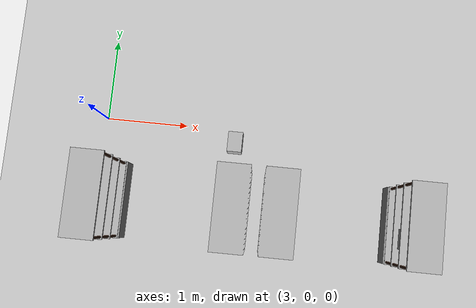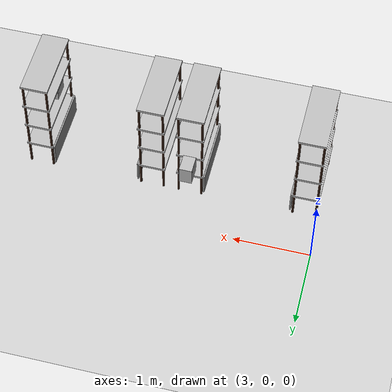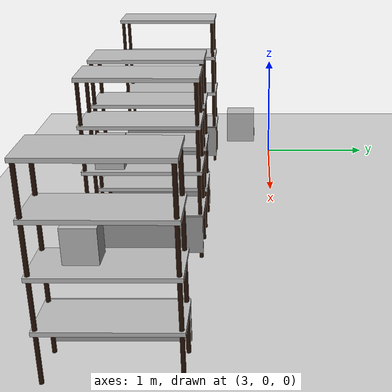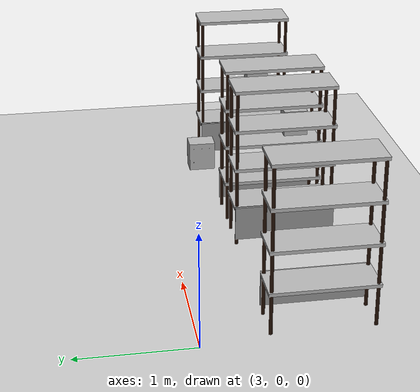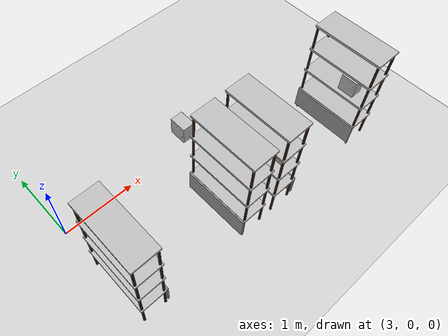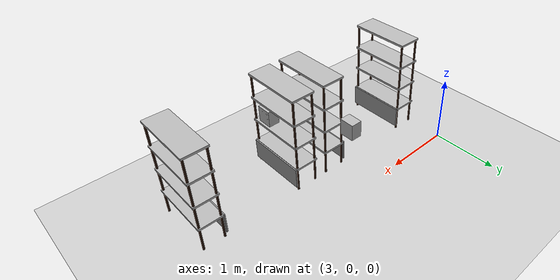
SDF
<sdf version="1.7">
 <world name="default">
  <model name="ground_plane">
   <static>1</static>
   <link name="link">
    <collision name="collision">
     <geometry><plane><normal>0 0 1</normal><size>100 100</size></plane></geometry>
     <surface><friction><ode><mu>100</mu><mu2>50</mu2></ode></friction></surface>
    </collision>
    <visual name="visual">
     <cast_shadows>0</cast_shadows>
     <geometry><plane><normal>0 0 1</normal><size>100 100</size></plane></geometry>
     <material>
      <script><uri>file://media/materials/scripts/gazebo.material</uri><name>Gazebo/Grey</name></script>
     </material>
    </visual>
   </link>
  </model>
  <model name="rack_0">
   <link name="link">
    <inertial>
     <mass>0.1</mass>
     <inertia><ixx>0.01857</ixx><ixy>0</ixy><ixz>0</ixz><iyy>0.015598</iyy><iyz>0</iyz><izz>0.00305</izz></inertia>
    </inertial>
    <visual name="visual1">
     <cast_shadows>0</cast_shadows>
     <geometry><mesh><uri>model://rack/meshes/rack.dae</uri></mesh></geometry>
     <material>
      <shader type="pixel"><normal_map>__default__</normal_map></shader>
      <emissive>0 0 0 1</emissive>
     </material>
    </visual>
    <visual name="visual_2">
     <cast_shadows>0</cast_shadows>
     <geometry><box><size>0.02 0.9 0.31</size></box></geometry>
     <material>
      <lighting>1</lighting>
      <script><uri>file://media/materials/scripts/gazebo.material</uri><name>Gazebo/Grey</name></script>
      <shader type="pixel"><normal_map>__default__</normal_map></shader>
      <ambient>0.3 0.3 0.3 1</ambient>
      <diffuse>0.7 0.7 0.7 1</diffuse>
      <specular>0.01 0.01 0.01 1</specular>
      <emissive>0 0 0 1</emissive>
     </material>
     <pose>-0.185 0 0.22 0 -0 0</pose>
    </visual>
    <collision name="collision_7">
     <pose>0 0 0.36 0 1.57 1.57</pose>
     <geometry><box><size>0.05 0.35 0.91</size></box></geometry>
     <surface>
      <friction>
       <ode><mu>1</mu><mu2>1</mu2><fdir1>0 0 0</fdir1><slip1>0</slip1><slip2>0</slip2></ode>
       <torsional>
        <coefficient>1</coefficient>
        <patch_radius>0</patch_radius>
        <surface_radius>0</surface_radius>
        <use_patch_radius>1</use_patch_radius>
        <ode><slip>0</slip></ode>
       </torsional>
      </friction>
      <bounce><restitution_coefficient>0</restitution_coefficient><threshold>1e+06</threshold></bounce>
      <contact>
       <collide_without_contact>0</collide_without_contact>
       <collide_without_contact_bitmask>1</collide_without_contact_bitmask>
       <collide_bitmask>1</collide_bitmask>
       <ode>
        <soft_cfm>0</soft_cfm>
        <soft_erp>0.2</soft_erp>
        <kp>1e+15</kp>
        <kd>1e+13</kd>
        <max_vel>0.01</max_vel>
        <min_depth>0</min_depth>
       </ode>
       <bullet>
        <split_impulse>1</split_impulse>
        <split_impulse_penetration_threshold>-0.01</split_impulse_penetration_threshold>
        <soft_cfm>0</soft_cfm>
        <soft_erp>0.2</soft_erp>
        <kp>1e+13</kp>
        <kd>1</kd>
       </bullet>
      </contact>
     </surface>
    </collision>
    <collision name="collision_6">
     <pose>0 0 0.725 0 1.57 1.57</pose>
     <geometry><box><size>0.05 0.35 0.91</size></box></geometry>
     <surface>
      <friction>
       <ode><mu>1</mu><mu2>1</mu2><fdir1>0 0 0</fdir1><slip1>0</slip1><slip2>0</slip2></ode>
       <torsional>
        <coefficient>1</coefficient>
        <patch_radius>0</patch_radius>
        <surface_radius>0</surface_radius>
        <use_patch_radius>1</use_patch_radius>
        <ode><slip>0</slip></ode>
       </torsional>
      </friction>
      <bounce><restitution_coefficient>0</restitution_coefficient><threshold>1e+06</threshold></bounce>
      <contact>
       <collide_without_contact>0</collide_without_contact>
       <collide_without_contact_bitmask>1</collide_without_contact_bitmask>
       <collide_bitmask>1</collide_bitmask>
       <ode>
        <soft_cfm>0</soft_cfm>
        <soft_erp>0.2</soft_erp>
        <kp>1e+15</kp>
        <kd>1e+13</kd>
        <max_vel>0.01</max_vel>
        <min_depth>0</min_depth>
       </ode>
       <bullet>
        <split_impulse>1</split_impulse>
        <split_impulse_penetration_threshold>-0.01</split_impulse_penetration_threshold>
        <soft_cfm>0</soft_cfm>
        <soft_erp>0.2</soft_erp>
        <kp>1e+13</kp>
        <kd>1</kd>
       </bullet>
      </contact>
     </surface>
    </collision>
    <collision name="collision_5">
     <pose>0 0 1.09 0 1.57 1.57</pose>
     <geometry><box><size>0.05 0.35 0.91</size></box></geometry>
     <surface>
      <friction>
       <ode><mu>1</mu><mu2>1</mu2><fdir1>0 0 0</fdir1><slip1>0</slip1><slip2>0</slip2></ode>
       <torsional>
        <coefficient>1</coefficient>
        <patch_radius>0</patch_radius>
        <surface_radius>0</surface_radius>
        <use_patch_radius>1</use_patch_radius>
        <ode><slip>0</slip></ode>
       </torsional>
      </friction>
      <bounce><restitution_coefficient>0</restitution_coefficient><threshold>1e+06</threshold></bounce>
      <contact>
       <collide_without_contact>0</collide_without_contact>
       <collide_without_contact_bitmask>1</collide_without_contact_bitmask>
       <collide_bitmask>1</collide_bitmask>
       <ode>
        <soft_cfm>0</soft_cfm>
        <soft_erp>0.2</soft_erp>
        <kp>1e+15</kp>
        <kd>1e+13</kd>
        <max_vel>0.01</max_vel>
        <min_depth>0</min_depth>
       </ode>
       <bullet>
        <split_impulse>1</split_impulse>
        <split_impulse_penetration_threshold>-0.01</split_impulse_penetration_threshold>
        <soft_cfm>0</soft_cfm>
        <soft_erp>0.2</soft_erp>
        <kp>1e+13</kp>
        <kd>1</kd>
       </bullet>
      </contact>
     </surface>
    </collision>
    <collision name="collision_3">
     <pose>0 0 1.455 0 1.57 1.57</pose>
     <geometry><box><size>0.05 0.35 0.91</size></box></geometry>
     <surface>
      <friction>
       <ode><mu>1</mu><mu2>1</mu2><fdir1>0 0 0</fdir1><slip1>0</slip1><slip2>0</slip2></ode>
       <torsional>
        <coefficient>1</coefficient>
        <patch_radius>0</patch_radius>
        <surface_radius>0</surface_radius>
        <use_patch_radius>1</use_patch_radius>
        <ode><slip>0</slip></ode>
       </torsional>
      </friction>
      <bounce><restitution_coefficient>0</restitution_coefficient><threshold>1e+06</threshold></bounce>
      <contact>
       <collide_without_contact>0</collide_without_contact>
       <collide_without_contact_bitmask>1</collide_without_contact_bitmask>
       <collide_bitmask>1</collide_bitmask>
       <ode>
        <soft_cfm>0</soft_cfm>
        <soft_erp>0.2</soft_erp>
        <kp>1e+15</kp>
        <kd>1e+13</kd>
        <max_vel>0.01</max_vel>
        <min_depth>0</min_depth>
       </ode>
       <bullet>
        <split_impulse>1</split_impulse>
        <split_impulse_penetration_threshold>-0.01</split_impulse_penetration_threshold>
        <soft_cfm>0</soft_cfm>
        <soft_erp>0.2</soft_erp>
        <kp>1e+13</kp>
        <kd>1</kd>
       </bullet>
      </contact>
     </surface>
    </collision>
    <collision name="collision_1">
     <pose>0 0.43 0.73 0 -0 1.57</pose>
     <geometry><box><size>0.05 0.36 1.46</size></box></geometry>
     <surface>
      <friction>
       <ode><mu>1</mu><mu2>1</mu2><fdir1>0 0 0</fdir1><slip1>0</slip1><slip2>0</slip2></ode>
       <torsional>
        <coefficient>1</coefficient>
        <patch_radius>0</patch_radius>
        <surface_radius>0</surface_radius>
        <use_patch_radius>1</use_patch_radius>
        <ode><slip>0</slip></ode>
       </torsional>
      </friction>
      <bounce><restitution_coefficient>0</restitution_coefficient><threshold>1e+06</threshold></bounce>
      <contact>
       <collide_without_contact>0</collide_without_contact>
       <collide_without_contact_bitmask>1</collide_without_contact_bitmask>
       <collide_bitmask>1</collide_bitmask>
       <ode>
        <soft_cfm>0</soft_cfm>
        <soft_erp>0.2</soft_erp>
        <kp>1e+15</kp>
        <kd>1e+13</kd>
        <max_vel>0.01</max_vel>
        <min_depth>0</min_depth>
       </ode>
       <bullet>
        <split_impulse>1</split_impulse>
        <split_impulse_penetration_threshold>-0.01</split_impulse_penetration_threshold>
        <soft_cfm>0</soft_cfm>
        <soft_erp>0.2</soft_erp>
        <kp>1e+13</kp>
        <kd>1</kd>
       </bullet>
      </contact>
     </surface>
    </collision>
    <collision name="collision_2">
     <pose>0 -0.43 0.73 0 -0 1.57</pose>
     <geometry><box><size>0.05 0.36 1.46</size></box></geometry>
     <surface>
      <friction>
       <ode><mu>1</mu><mu2>1</mu2><fdir1>0 0 0</fdir1><slip1>0</slip1><slip2>0</slip2></ode>
       <torsional>
        <coefficient>1</coefficient>
        <patch_radius>0</patch_radius>
        <surface_radius>0</surface_radius>
        <use_patch_radius>1</use_patch_radius>
        <ode><slip>0</slip></ode>
       </torsional>
      </friction>
      <bounce><restitution_coefficient>0</restitution_coefficient><threshold>1e+06</threshold></bounce>
      <contact>
       <collide_without_contact>0</collide_without_contact>
       <collide_without_contact_bitmask>1</collide_without_contact_bitmask>
       <collide_bitmask>1</collide_bitmask>
       <ode>
        <soft_cfm>0</soft_cfm>
        <soft_erp>0.2</soft_erp>
        <kp>1e+15</kp>
        <kd>1e+13</kd>
        <max_vel>0.01</max_vel>
        <min_depth>0</min_depth>
       </ode>
       <bullet>
        <split_impulse>1</split_impulse>
        <split_impulse_penetration_threshold>-0.01</split_impulse_penetration_threshold>
        <soft_cfm>0</soft_cfm>
        <soft_erp>0.2</soft_erp>
        <kp>1e+13</kp>
        <kd>1</kd>
       </bullet>
      </contact>
     </surface>
    </collision>
    <collision name="collision">
     <pose>-0.185 0 0.22 0 -0 0</pose>
     <geometry><box><size>0.02 0.9 0.31</size></box></geometry>
     <surface>
      <friction>
       <ode><mu>1</mu><mu2>1</mu2><fdir1>0 0 0</fdir1><slip1>0</slip1><slip2>0</slip2></ode>
       <torsional>
        <coefficient>1</coefficient>
        <patch_radius>0</patch_radius>
        <surface_radius>0</surface_radius>
        <use_patch_radius>1</use_patch_radius>
        <ode><slip>0</slip></ode>
       </torsional>
      </friction>
      <bounce><restitution_coefficient>0</restitution_coefficient><threshold>1e+06</threshold></bounce>
      <contact>
       <collide_without_contact>0</collide_without_contact>
       <collide_without_contact_bitmask>1</collide_without_contact_bitmask>
       <collide_bitmask>1</collide_bitmask>
       <ode>
        <soft_cfm>0</soft_cfm>
        <soft_erp>0.2</soft_erp>
        <kp>1e+15</kp>
        <kd>1e+13</kd>
        <max_vel>0.01</max_vel>
        <min_depth>0</min_depth>
       </ode>
       <bullet>
        <split_impulse>1</split_impulse>
        <split_impulse_penetration_threshold>-0.01</split_impulse_penetration_threshold>
        <soft_cfm>0</soft_cfm>
        <soft_erp>0.2</soft_erp>
        <kp>1e+13</kp>
        <kd>1</kd>
       </bullet>
      </contact>
     </surface>
    </collision>
   </link>
   <static>0</static>
   <pose>6.68734 -0.999831 0.030505 0.000236 -0.004828 -0.004037</pose>
  </model>
  <model name="rack_5">
   <link name="link">
    <inertial>
     <mass>0.1</mass>
     <inertia><ixx>0.01857</ixx><ixy>0</ixy><ixz>0</ixz><iyy>0.015598</iyy><iyz>0</iyz><izz>0.00305</izz></inertia>
    </inertial>
    <visual name="visual1">
     <cast_shadows>0</cast_shadows>
     <geometry><mesh><uri>model://rack/meshes/rack.dae</uri></mesh></geometry>
     <material>
      <shader type="pixel"><normal_map>__default__</normal_map></shader>
      <emissive>0 0 0 1</emissive>
     </material>
    </visual>
    <visual name="visual_2">
     <cast_shadows>0</cast_shadows>
     <geometry><box><size>0.02 0.9 0.31</size></box></geometry>
     <material>
      <lighting>1</lighting>
      <script><uri>file://media/materials/scripts/gazebo.material</uri><name>Gazebo/Grey</name></script>
      <shader type="pixel"><normal_map>__default__</normal_map></shader>
      <ambient>0.3 0.3 0.3 1</ambient>
      <diffuse>0.7 0.7 0.7 1</diffuse>
      <specular>0.01 0.01 0.01 1</specular>
      <emissive>0 0 0 1</emissive>
     </material>
     <pose>-0.185 0 0.22 0 -0 0</pose>
    </visual>
    <collision name="collision_7">
     <pose>0 0 0.36 0 1.57 1.57</pose>
     <geometry><box><size>0.05 0.35 0.91</size></box></geometry>
     <surface>
      <friction>
       <ode><mu>1</mu><mu2>1</mu2><fdir1>0 0 0</fdir1><slip1>0</slip1><slip2>0</slip2></ode>
       <torsional>
        <coefficient>1</coefficient>
        <patch_radius>0</patch_radius>
        <surface_radius>0</surface_radius>
        <use_patch_radius>1</use_patch_radius>
        <ode><slip>0</slip></ode>
       </torsional>
      </friction>
      <bounce><restitution_coefficient>0</restitution_coefficient><threshold>1e+06</threshold></bounce>
      <contact>
       <collide_without_contact>0</collide_without_contact>
       <collide_without_contact_bitmask>1</collide_without_contact_bitmask>
       <collide_bitmask>1</collide_bitmask>
       <ode>
        <soft_cfm>0</soft_cfm>
        <soft_erp>0.2</soft_erp>
        <kp>1e+15</kp>
        <kd>1e+13</kd>
        <max_vel>0.01</max_vel>
        <min_depth>0</min_depth>
       </ode>
       <bullet>
        <split_impulse>1</split_impulse>
        <split_impulse_penetration_threshold>-0.01</split_impulse_penetration_threshold>
        <soft_cfm>0</soft_cfm>
        <soft_erp>0.2</soft_erp>
        <kp>1e+13</kp>
        <kd>1</kd>
       </bullet>
      </contact>
     </surface>
    </collision>
    <collision name="collision_6">
     <pose>0 0 0.725 0 1.57 1.57</pose>
     <geometry><box><size>0.05 0.35 0.91</size></box></geometry>
     <surface>
      <friction>
       <ode><mu>1</mu><mu2>1</mu2><fdir1>0 0 0</fdir1><slip1>0</slip1><slip2>0</slip2></ode>
       <torsional>
        <coefficient>1</coefficient>
        <patch_radius>0</patch_radius>
        <surface_radius>0</surface_radius>
        <use_patch_radius>1</use_patch_radius>
        <ode><slip>0</slip></ode>
       </torsional>
      </friction>
      <bounce><restitution_coefficient>0</restitution_coefficient><threshold>1e+06</threshold></bounce>
      <contact>
       <collide_without_contact>0</collide_without_contact>
       <collide_without_contact_bitmask>1</collide_without_contact_bitmask>
       <collide_bitmask>1</collide_bitmask>
       <ode>
        <soft_cfm>0</soft_cfm>
        <soft_erp>0.2</soft_erp>
        <kp>1e+15</kp>
        <kd>1e+13</kd>
        <max_vel>0.01</max_vel>
        <min_depth>0</min_depth>
       </ode>
       <bullet>
        <split_impulse>1</split_impulse>
        <split_impulse_penetration_threshold>-0.01</split_impulse_penetration_threshold>
        <soft_cfm>0</soft_cfm>
        <soft_erp>0.2</soft_erp>
        <kp>1e+13</kp>
        <kd>1</kd>
       </bullet>
      </contact>
     </surface>
    </collision>
    <collision name="collision_5">
     <pose>0 0 1.09 0 1.57 1.57</pose>
     <geometry><box><size>0.05 0.35 0.91</size></box></geometry>
     <surface>
      <friction>
       <ode><mu>1</mu><mu2>1</mu2><fdir1>0 0 0</fdir1><slip1>0</slip1><slip2>0</slip2></ode>
       <torsional>
        <coefficient>1</coefficient>
        <patch_radius>0</patch_radius>
        <surface_radius>0</surface_radius>
        <use_patch_radius>1</use_patch_radius>
        <ode><slip>0</slip></ode>
       </torsional>
      </friction>
      <bounce><restitution_coefficient>0</restitution_coefficient><threshold>1e+06</threshold></bounce>
      <contact>
       <collide_without_contact>0</collide_without_contact>
       <collide_without_contact_bitmask>1</collide_without_contact_bitmask>
       <collide_bitmask>1</collide_bitmask>
       <ode>
        <soft_cfm>0</soft_cfm>
        <soft_erp>0.2</soft_erp>
        <kp>1e+15</kp>
        <kd>1e+13</kd>
        <max_vel>0.01</max_vel>
        <min_depth>0</min_depth>
       </ode>
       <bullet>
        <split_impulse>1</split_impulse>
        <split_impulse_penetration_threshold>-0.01</split_impulse_penetration_threshold>
        <soft_cfm>0</soft_cfm>
        <soft_erp>0.2</soft_erp>
        <kp>1e+13</kp>
        <kd>1</kd>
       </bullet>
      </contact>
     </surface>
    </collision>
    <collision name="collision_3">
     <pose>0 0 1.455 0 1.57 1.57</pose>
     <geometry><box><size>0.05 0.35 0.91</size></box></geometry>
     <surface>
      <friction>
       <ode><mu>1</mu><mu2>1</mu2><fdir1>0 0 0</fdir1><slip1>0</slip1><slip2>0</slip2></ode>
       <torsional>
        <coefficient>1</coefficient>
        <patch_radius>0</patch_radius>
        <surface_radius>0</surface_radius>
        <use_patch_radius>1</use_patch_radius>
        <ode><slip>0</slip></ode>
       </torsional>
      </friction>
      <bounce><restitution_coefficient>0</restitution_coefficient><threshold>1e+06</threshold></bounce>
      <contact>
       <collide_without_contact>0</collide_without_contact>
       <collide_without_contact_bitmask>1</collide_without_contact_bitmask>
       <collide_bitmask>1</collide_bitmask>
       <ode>
        <soft_cfm>0</soft_cfm>
        <soft_erp>0.2</soft_erp>
        <kp>1e+15</kp>
        <kd>1e+13</kd>
        <max_vel>0.01</max_vel>
        <min_depth>0</min_depth>
       </ode>
       <bullet>
        <split_impulse>1</split_impulse>
        <split_impulse_penetration_threshold>-0.01</split_impulse_penetration_threshold>
        <soft_cfm>0</soft_cfm>
        <soft_erp>0.2</soft_erp>
        <kp>1e+13</kp>
        <kd>1</kd>
       </bullet>
      </contact>
     </surface>
    </collision>
    <collision name="collision_1">
     <pose>0 0.43 0.73 0 -0 1.57</pose>
     <geometry><box><size>0.05 0.36 1.46</size></box></geometry>
     <surface>
      <friction>
       <ode><mu>1</mu><mu2>1</mu2><fdir1>0 0 0</fdir1><slip1>0</slip1><slip2>0</slip2></ode>
       <torsional>
        <coefficient>1</coefficient>
        <patch_radius>0</patch_radius>
        <surface_radius>0</surface_radius>
        <use_patch_radius>1</use_patch_radius>
        <ode><slip>0</slip></ode>
       </torsional>
      </friction>
      <bounce><restitution_coefficient>0</restitution_coefficient><threshold>1e+06</threshold></bounce>
      <contact>
       <collide_without_contact>0</collide_without_contact>
       <collide_without_contact_bitmask>1</collide_without_contact_bitmask>
       <collide_bitmask>1</collide_bitmask>
       <ode>
        <soft_cfm>0</soft_cfm>
        <soft_erp>0.2</soft_erp>
        <kp>1e+15</kp>
        <kd>1e+13</kd>
        <max_vel>0.01</max_vel>
        <min_depth>0</min_depth>
       </ode>
       <bullet>
        <split_impulse>1</split_impulse>
        <split_impulse_penetration_threshold>-0.01</split_impulse_penetration_threshold>
        <soft_cfm>0</soft_cfm>
        <soft_erp>0.2</soft_erp>
        <kp>1e+13</kp>
        <kd>1</kd>
       </bullet>
      </contact>
     </surface>
    </collision>
    <collision name="collision_2">
     <pose>0 -0.43 0.73 0 -0 1.57</pose>
     <geometry><box><size>0.05 0.36 1.46</size></box></geometry>
     <surface>
      <friction>
       <ode><mu>1</mu><mu2>1</mu2><fdir1>0 0 0</fdir1><slip1>0</slip1><slip2>0</slip2></ode>
       <torsional>
        <coefficient>1</coefficient>
        <patch_radius>0</patch_radius>
        <surface_radius>0</surface_radius>
        <use_patch_radius>1</use_patch_radius>
        <ode><slip>0</slip></ode>
       </torsional>
      </friction>
      <bounce><restitution_coefficient>0</restitution_coefficient><threshold>1e+06</threshold></bounce>
      <contact>
       <collide_without_contact>0</collide_without_contact>
       <collide_without_contact_bitmask>1</collide_without_contact_bitmask>
       <collide_bitmask>1</collide_bitmask>
       <ode>
        <soft_cfm>0</soft_cfm>
        <soft_erp>0.2</soft_erp>
        <kp>1e+15</kp>
        <kd>1e+13</kd>
        <max_vel>0.01</max_vel>
        <min_depth>0</min_depth>
       </ode>
       <bullet>
        <split_impulse>1</split_impulse>
        <split_impulse_penetration_threshold>-0.01</split_impulse_penetration_threshold>
        <soft_cfm>0</soft_cfm>
        <soft_erp>0.2</soft_erp>
        <kp>1e+13</kp>
        <kd>1</kd>
       </bullet>
      </contact>
     </surface>
    </collision>
    <collision name="collision">
     <pose>-0.185 0 0.22 0 -0 0</pose>
     <geometry><box><size>0.02 0.9 0.31</size></box></geometry>
     <surface>
      <friction>
       <ode><mu>1</mu><mu2>1</mu2><fdir1>0 0 0</fdir1><slip1>0</slip1><slip2>0</slip2></ode>
       <torsional>
        <coefficient>1</coefficient>
        <patch_radius>0</patch_radius>
        <surface_radius>0</surface_radius>
        <use_patch_radius>1</use_patch_radius>
        <ode><slip>0</slip></ode>
       </torsional>
      </friction>
      <bounce><restitution_coefficient>0</restitution_coefficient><threshold>1e+06</threshold></bounce>
      <contact>
       <collide_without_contact>0</collide_without_contact>
       <collide_without_contact_bitmask>1</collide_without_contact_bitmask>
       <collide_bitmask>1</collide_bitmask>
       <ode>
        <soft_cfm>0</soft_cfm>
        <soft_erp>0.2</soft_erp>
        <kp>1e+15</kp>
        <kd>1e+13</kd>
        <max_vel>0.01</max_vel>
        <min_depth>0</min_depth>
       </ode>
       <bullet>
        <split_impulse>1</split_impulse>
        <split_impulse_penetration_threshold>-0.01</split_impulse_penetration_threshold>
        <soft_cfm>0</soft_cfm>
        <soft_erp>0.2</soft_erp>
        <kp>1e+13</kp>
        <kd>1</kd>
       </bullet>
      </contact>
     </surface>
    </collision>
   </link>
   <static>0</static>
   <pose>5.2 -1 0.034223 1e-06 1e-06 3.14</pose>
  </model>
  <model name="rack_9">
   <link name="link">
    <inertial>
     <mass>0.1</mass>
     <inertia><ixx>0.01857</ixx><ixy>0</ixy><ixz>0</ixz><iyy>0.015598</iyy><iyz>0</iyz><izz>0.00305</izz></inertia>
    </inertial>
    <visual name="visual1">
     <cast_shadows>0</cast_shadows>
     <geometry><mesh><uri>model://rack/meshes/rack.dae</uri></mesh></geometry>
     <material>
      <shader type="pixel"><normal_map>__default__</normal_map></shader>
      <emissive>0 0 0 1</emissive>
     </material>
    </visual>
    <visual name="visual_2">
     <cast_shadows>0</cast_shadows>
     <geometry><box><size>0.02 0.9 0.31</size></box></geometry>
     <material>
      <lighting>1</lighting>
      <script><uri>file://media/materials/scripts/gazebo.material</uri><name>Gazebo/Grey</name></script>
      <shader type="pixel"><normal_map>__default__</normal_map></shader>
      <ambient>0.3 0.3 0.3 1</ambient>
      <diffuse>0.7 0.7 0.7 1</diffuse>
      <specular>0.01 0.01 0.01 1</specular>
      <emissive>0 0 0 1</emissive>
     </material>
     <pose>-0.185 0 0.22 0 -0 0</pose>
    </visual>
    <collision name="collision_7">
     <pose>0 0 0.36 0 1.57 1.57</pose>
     <geometry><box><size>0.05 0.35 0.91</size></box></geometry>
     <surface>
      <friction>
       <ode><mu>1</mu><mu2>1</mu2><fdir1>0 0 0</fdir1><slip1>0</slip1><slip2>0</slip2></ode>
       <torsional>
        <coefficient>1</coefficient>
        <patch_radius>0</patch_radius>
        <surface_radius>0</surface_radius>
        <use_patch_radius>1</use_patch_radius>
        <ode><slip>0</slip></ode>
       </torsional>
      </friction>
      <bounce><restitution_coefficient>0</restitution_coefficient><threshold>1e+06</threshold></bounce>
      <contact>
       <collide_without_contact>0</collide_without_contact>
       <collide_without_contact_bitmask>1</collide_without_contact_bitmask>
       <collide_bitmask>1</collide_bitmask>
       <ode>
        <soft_cfm>0</soft_cfm>
        <soft_erp>0.2</soft_erp>
        <kp>1e+15</kp>
        <kd>1e+13</kd>
        <max_vel>0.01</max_vel>
        <min_depth>0</min_depth>
       </ode>
       <bullet>
        <split_impulse>1</split_impulse>
        <split_impulse_penetration_threshold>-0.01</split_impulse_penetration_threshold>
        <soft_cfm>0</soft_cfm>
        <soft_erp>0.2</soft_erp>
        <kp>1e+13</kp>
        <kd>1</kd>
       </bullet>
      </contact>
     </surface>
    </collision>
    <collision name="collision_6">
     <pose>0 0 0.725 0 1.57 1.57</pose>
     <geometry><box><size>0.05 0.35 0.91</size></box></geometry>
     <surface>
      <friction>
       <ode><mu>1</mu><mu2>1</mu2><fdir1>0 0 0</fdir1><slip1>0</slip1><slip2>0</slip2></ode>
       <torsional>
        <coefficient>1</coefficient>
        <patch_radius>0</patch_radius>
        <surface_radius>0</surface_radius>
        <use_patch_radius>1</use_patch_radius>
        <ode><slip>0</slip></ode>
       </torsional>
      </friction>
      <bounce><restitution_coefficient>0</restitution_coefficient><threshold>1e+06</threshold></bounce>
      <contact>
       <collide_without_contact>0</collide_without_contact>
       <collide_without_contact_bitmask>1</collide_without_contact_bitmask>
       <collide_bitmask>1</collide_bitmask>
       <ode>
        <soft_cfm>0</soft_cfm>
        <soft_erp>0.2</soft_erp>
        <kp>1e+15</kp>
        <kd>1e+13</kd>
        <max_vel>0.01</max_vel>
        <min_depth>0</min_depth>
       </ode>
       <bullet>
        <split_impulse>1</split_impulse>
        <split_impulse_penetration_threshold>-0.01</split_impulse_penetration_threshold>
        <soft_cfm>0</soft_cfm>
        <soft_erp>0.2</soft_erp>
        <kp>1e+13</kp>
        <kd>1</kd>
       </bullet>
      </contact>
     </surface>
    </collision>
    <collision name="collision_5">
     <pose>0 0 1.09 0 1.57 1.57</pose>
     <geometry><box><size>0.05 0.35 0.91</size></box></geometry>
     <surface>
      <friction>
       <ode><mu>1</mu><mu2>1</mu2><fdir1>0 0 0</fdir1><slip1>0</slip1><slip2>0</slip2></ode>
       <torsional>
        <coefficient>1</coefficient>
        <patch_radius>0</patch_radius>
        <surface_radius>0</surface_radius>
        <use_patch_radius>1</use_patch_radius>
        <ode><slip>0</slip></ode>
       </torsional>
      </friction>
      <bounce><restitution_coefficient>0</restitution_coefficient><threshold>1e+06</threshold></bounce>
      <contact>
       <collide_without_contact>0</collide_without_contact>
       <collide_without_contact_bitmask>1</collide_without_contact_bitmask>
       <collide_bitmask>1</collide_bitmask>
       <ode>
        <soft_cfm>0</soft_cfm>
        <soft_erp>0.2</soft_erp>
        <kp>1e+15</kp>
        <kd>1e+13</kd>
        <max_vel>0.01</max_vel>
        <min_depth>0</min_depth>
       </ode>
       <bullet>
        <split_impulse>1</split_impulse>
        <split_impulse_penetration_threshold>-0.01</split_impulse_penetration_threshold>
        <soft_cfm>0</soft_cfm>
        <soft_erp>0.2</soft_erp>
        <kp>1e+13</kp>
        <kd>1</kd>
       </bullet>
      </contact>
     </surface>
    </collision>
    <collision name="collision_3">
     <pose>0 0 1.455 0 1.57 1.57</pose>
     <geometry><box><size>0.05 0.35 0.91</size></box></geometry>
     <surface>
      <friction>
       <ode><mu>1</mu><mu2>1</mu2><fdir1>0 0 0</fdir1><slip1>0</slip1><slip2>0</slip2></ode>
       <torsional>
        <coefficient>1</coefficient>
        <patch_radius>0</patch_radius>
        <surface_radius>0</surface_radius>
        <use_patch_radius>1</use_patch_radius>
        <ode><slip>0</slip></ode>
       </torsional>
      </friction>
      <bounce><restitution_coefficient>0</restitution_coefficient><threshold>1e+06</threshold></bounce>
      <contact>
       <collide_without_contact>0</collide_without_contact>
       <collide_without_contact_bitmask>1</collide_without_contact_bitmask>
       <collide_bitmask>1</collide_bitmask>
       <ode>
        <soft_cfm>0</soft_cfm>
        <soft_erp>0.2</soft_erp>
        <kp>1e+15</kp>
        <kd>1e+13</kd>
        <max_vel>0.01</max_vel>
        <min_depth>0</min_depth>
       </ode>
       <bullet>
        <split_impulse>1</split_impulse>
        <split_impulse_penetration_threshold>-0.01</split_impulse_penetration_threshold>
        <soft_cfm>0</soft_cfm>
        <soft_erp>0.2</soft_erp>
        <kp>1e+13</kp>
        <kd>1</kd>
       </bullet>
      </contact>
     </surface>
    </collision>
    <collision name="collision_1">
     <pose>0 0.43 0.73 0 -0 1.57</pose>
     <geometry><box><size>0.05 0.36 1.46</size></box></geometry>
     <surface>
      <friction>
       <ode><mu>1</mu><mu2>1</mu2><fdir1>0 0 0</fdir1><slip1>0</slip1><slip2>0</slip2></ode>
       <torsional>
        <coefficient>1</coefficient>
        <patch_radius>0</patch_radius>
        <surface_radius>0</surface_radius>
        <use_patch_radius>1</use_patch_radius>
        <ode><slip>0</slip></ode>
       </torsional>
      </friction>
      <bounce><restitution_coefficient>0</restitution_coefficient><threshold>1e+06</threshold></bounce>
      <contact>
       <collide_without_contact>0</collide_without_contact>
       <collide_without_contact_bitmask>1</collide_without_contact_bitmask>
       <collide_bitmask>1</collide_bitmask>
       <ode>
        <soft_cfm>0</soft_cfm>
        <soft_erp>0.2</soft_erp>
        <kp>1e+15</kp>
        <kd>1e+13</kd>
        <max_vel>0.01</max_vel>
        <min_depth>0</min_depth>
       </ode>
       <bullet>
        <split_impulse>1</split_impulse>
        <split_impulse_penetration_threshold>-0.01</split_impulse_penetration_threshold>
        <soft_cfm>0</soft_cfm>
        <soft_erp>0.2</soft_erp>
        <kp>1e+13</kp>
        <kd>1</kd>
       </bullet>
      </contact>
     </surface>
    </collision>
    <collision name="collision_2">
     <pose>0 -0.43 0.73 0 -0 1.57</pose>
     <geometry><box><size>0.05 0.36 1.46</size></box></geometry>
     <surface>
      <friction>
       <ode><mu>1</mu><mu2>1</mu2><fdir1>0 0 0</fdir1><slip1>0</slip1><slip2>0</slip2></ode>
       <torsional>
        <coefficient>1</coefficient>
        <patch_radius>0</patch_radius>
        <surface_radius>0</surface_radius>
        <use_patch_radius>1</use_patch_radius>
        <ode><slip>0</slip></ode>
       </torsional>
      </friction>
      <bounce><restitution_coefficient>0</restitution_coefficient><threshold>1e+06</threshold></bounce>
      <contact>
       <collide_without_contact>0</collide_without_contact>
       <collide_without_contact_bitmask>1</collide_without_contact_bitmask>
       <collide_bitmask>1</collide_bitmask>
       <ode>
        <soft_cfm>0</soft_cfm>
        <soft_erp>0.2</soft_erp>
        <kp>1e+15</kp>
        <kd>1e+13</kd>
        <max_vel>0.01</max_vel>
        <min_depth>0</min_depth>
       </ode>
       <bullet>
        <split_impulse>1</split_impulse>
        <split_impulse_penetration_threshold>-0.01</split_impulse_penetration_threshold>
        <soft_cfm>0</soft_cfm>
        <soft_erp>0.2</soft_erp>
        <kp>1e+13</kp>
        <kd>1</kd>
       </bullet>
      </contact>
     </surface>
    </collision>
    <collision name="collision">
     <pose>-0.185 0 0.22 0 -0 0</pose>
     <geometry><box><size>0.02 0.9 0.31</size></box></geometry>
     <surface>
      <friction>
       <ode><mu>1</mu><mu2>1</mu2><fdir1>0 0 0</fdir1><slip1>0</slip1><slip2>0</slip2></ode>
       <torsional>
        <coefficient>1</coefficient>
        <patch_radius>0</patch_radius>
        <surface_radius>0</surface_radius>
        <use_patch_radius>1</use_patch_radius>
        <ode><slip>0</slip></ode>
       </torsional>
      </friction>
      <bounce><restitution_coefficient>0</restitution_coefficient><threshold>1e+06</threshold></bounce>
      <contact>
       <collide_without_contact>0</collide_without_contact>
       <collide_without_contact_bitmask>1</collide_without_contact_bitmask>
       <collide_bitmask>1</collide_bitmask>
       <ode>
        <soft_cfm>0</soft_cfm>
        <soft_erp>0.2</soft_erp>
        <kp>1e+15</kp>
        <kd>1e+13</kd>
        <max_vel>0.01</max_vel>
        <min_depth>0</min_depth>
       </ode>
       <bullet>
        <split_impulse>1</split_impulse>
        <split_impulse_penetration_threshold>-0.01</split_impulse_penetration_threshold>
        <soft_cfm>0</soft_cfm>
        <soft_erp>0.2</soft_erp>
        <kp>1e+13</kp>
        <kd>1</kd>
       </bullet>
      </contact>
     </surface>
    </collision>
   </link>
   <static>0</static>
   <pose>4.7 -1 0.034216 0 -0 0</pose>
  </model>
  <model name="rack_13">
   <link name="link">
    <inertial>
     <mass>0.1</mass>
     <inertia><ixx>0.01857</ixx><ixy>0</ixy><ixz>0</ixz><iyy>0.015598</iyy><iyz>0</iyz><izz>0.00305</izz></inertia>
    </inertial>
    <visual name="visual1">
     <cast_shadows>0</cast_shadows>
     <geometry><mesh><uri>model://rack/meshes/rack.dae</uri></mesh></geometry>
     <material>
      <shader type="pixel"><normal_map>__default__</normal_map></shader>
      <emissive>0 0 0 1</emissive>
     </material>
    </visual>
    <visual name="visual_2">
     <cast_shadows>0</cast_shadows>
     <geometry><box><size>0.02 0.9 0.31</size></box></geometry>
     <material>
      <lighting>1</lighting>
      <script><uri>file://media/materials/scripts/gazebo.material</uri><name>Gazebo/Grey</name></script>
      <shader type="pixel"><normal_map>__default__</normal_map></shader>
      <ambient>0.3 0.3 0.3 1</ambient>
      <diffuse>0.7 0.7 0.7 1</diffuse>
      <specular>0.01 0.01 0.01 1</specular>
      <emissive>0 0 0 1</emissive>
     </material>
     <pose>-0.185 0 0.22 0 -0 0</pose>
    </visual>
    <collision name="collision_7">
     <pose>0 0 0.36 0 1.57 1.57</pose>
     <geometry><box><size>0.05 0.35 0.91</size></box></geometry>
     <surface>
      <friction>
       <ode><mu>1</mu><mu2>1</mu2><fdir1>0 0 0</fdir1><slip1>0</slip1><slip2>0</slip2></ode>
       <torsional>
        <coefficient>1</coefficient>
        <patch_radius>0</patch_radius>
        <surface_radius>0</surface_radius>
        <use_patch_radius>1</use_patch_radius>
        <ode><slip>0</slip></ode>
       </torsional>
      </friction>
      <bounce><restitution_coefficient>0</restitution_coefficient><threshold>1e+06</threshold></bounce>
      <contact>
       <collide_without_contact>0</collide_without_contact>
       <collide_without_contact_bitmask>1</collide_without_contact_bitmask>
       <collide_bitmask>1</collide_bitmask>
       <ode>
        <soft_cfm>0</soft_cfm>
        <soft_erp>0.2</soft_erp>
        <kp>1e+15</kp>
        <kd>1e+13</kd>
        <max_vel>0.01</max_vel>
        <min_depth>0</min_depth>
       </ode>
       <bullet>
        <split_impulse>1</split_impulse>
        <split_impulse_penetration_threshold>-0.01</split_impulse_penetration_threshold>
        <soft_cfm>0</soft_cfm>
        <soft_erp>0.2</soft_erp>
        <kp>1e+13</kp>
        <kd>1</kd>
       </bullet>
      </contact>
     </surface>
    </collision>
    <collision name="collision_6">
     <pose>0 0 0.725 0 1.57 1.57</pose>
     <geometry><box><size>0.05 0.35 0.91</size></box></geometry>
     <surface>
      <friction>
       <ode><mu>1</mu><mu2>1</mu2><fdir1>0 0 0</fdir1><slip1>0</slip1><slip2>0</slip2></ode>
       <torsional>
        <coefficient>1</coefficient>
        <patch_radius>0</patch_radius>
        <surface_radius>0</surface_radius>
        <use_patch_radius>1</use_patch_radius>
        <ode><slip>0</slip></ode>
       </torsional>
      </friction>
      <bounce><restitution_coefficient>0</restitution_coefficient><threshold>1e+06</threshold></bounce>
      <contact>
       <collide_without_contact>0</collide_without_contact>
       <collide_without_contact_bitmask>1</collide_without_contact_bitmask>
       <collide_bitmask>1</collide_bitmask>
       <ode>
        <soft_cfm>0</soft_cfm>
        <soft_erp>0.2</soft_erp>
        <kp>1e+15</kp>
        <kd>1e+13</kd>
        <max_vel>0.01</max_vel>
        <min_depth>0</min_depth>
       </ode>
       <bullet>
        <split_impulse>1</split_impulse>
        <split_impulse_penetration_threshold>-0.01</split_impulse_penetration_threshold>
        <soft_cfm>0</soft_cfm>
        <soft_erp>0.2</soft_erp>
        <kp>1e+13</kp>
        <kd>1</kd>
       </bullet>
      </contact>
     </surface>
    </collision>
    <collision name="collision_5">
     <pose>0 0 1.09 0 1.57 1.57</pose>
     <geometry><box><size>0.05 0.35 0.91</size></box></geometry>
     <surface>
      <friction>
       <ode><mu>1</mu><mu2>1</mu2><fdir1>0 0 0</fdir1><slip1>0</slip1><slip2>0</slip2></ode>
       <torsional>
        <coefficient>1</coefficient>
        <patch_radius>0</patch_radius>
        <surface_radius>0</surface_radius>
        <use_patch_radius>1</use_patch_radius>
        <ode><slip>0</slip></ode>
       </torsional>
      </friction>
      <bounce><restitution_coefficient>0</restitution_coefficient><threshold>1e+06</threshold></bounce>
      <contact>
       <collide_without_contact>0</collide_without_contact>
       <collide_without_contact_bitmask>1</collide_without_contact_bitmask>
       <collide_bitmask>1</collide_bitmask>
       <ode>
        <soft_cfm>0</soft_cfm>
        <soft_erp>0.2</soft_erp>
        <kp>1e+15</kp>
        <kd>1e+13</kd>
        <max_vel>0.01</max_vel>
        <min_depth>0</min_depth>
       </ode>
       <bullet>
        <split_impulse>1</split_impulse>
        <split_impulse_penetration_threshold>-0.01</split_impulse_penetration_threshold>
        <soft_cfm>0</soft_cfm>
        <soft_erp>0.2</soft_erp>
        <kp>1e+13</kp>
        <kd>1</kd>
       </bullet>
      </contact>
     </surface>
    </collision>
    <collision name="collision_3">
     <pose>0 0 1.455 0 1.57 1.57</pose>
     <geometry><box><size>0.05 0.35 0.91</size></box></geometry>
     <surface>
      <friction>
       <ode><mu>1</mu><mu2>1</mu2><fdir1>0 0 0</fdir1><slip1>0</slip1><slip2>0</slip2></ode>
       <torsional>
        <coefficient>1</coefficient>
        <patch_radius>0</patch_radius>
        <surface_radius>0</surface_radius>
        <use_patch_radius>1</use_patch_radius>
        <ode><slip>0</slip></ode>
       </torsional>
      </friction>
      <bounce><restitution_coefficient>0</restitution_coefficient><threshold>1e+06</threshold></bounce>
      <contact>
       <collide_without_contact>0</collide_without_contact>
       <collide_without_contact_bitmask>1</collide_without_contact_bitmask>
       <collide_bitmask>1</collide_bitmask>
       <ode>
        <soft_cfm>0</soft_cfm>
        <soft_erp>0.2</soft_erp>
        <kp>1e+15</kp>
        <kd>1e+13</kd>
        <max_vel>0.01</max_vel>
        <min_depth>0</min_depth>
       </ode>
       <bullet>
        <split_impulse>1</split_impulse>
        <split_impulse_penetration_threshold>-0.01</split_impulse_penetration_threshold>
        <soft_cfm>0</soft_cfm>
        <soft_erp>0.2</soft_erp>
        <kp>1e+13</kp>
        <kd>1</kd>
       </bullet>
      </contact>
     </surface>
    </collision>
    <collision name="collision_1">
     <pose>0 0.43 0.73 0 -0 1.57</pose>
     <geometry><box><size>0.05 0.36 1.46</size></box></geometry>
     <surface>
      <friction>
       <ode><mu>1</mu><mu2>1</mu2><fdir1>0 0 0</fdir1><slip1>0</slip1><slip2>0</slip2></ode>
       <torsional>
        <coefficient>1</coefficient>
        <patch_radius>0</patch_radius>
        <surface_radius>0</surface_radius>
        <use_patch_radius>1</use_patch_radius>
        <ode><slip>0</slip></ode>
       </torsional>
      </friction>
      <bounce><restitution_coefficient>0</restitution_coefficient><threshold>1e+06</threshold></bounce>
      <contact>
       <collide_without_contact>0</collide_without_contact>
       <collide_without_contact_bitmask>1</collide_without_contact_bitmask>
       <collide_bitmask>1</collide_bitmask>
       <ode>
        <soft_cfm>0</soft_cfm>
        <soft_erp>0.2</soft_erp>
        <kp>1e+15</kp>
        <kd>1e+13</kd>
        <max_vel>0.01</max_vel>
        <min_depth>0</min_depth>
       </ode>
       <bullet>
        <split_impulse>1</split_impulse>
        <split_impulse_penetration_threshold>-0.01</split_impulse_penetration_threshold>
        <soft_cfm>0</soft_cfm>
        <soft_erp>0.2</soft_erp>
        <kp>1e+13</kp>
        <kd>1</kd>
       </bullet>
      </contact>
     </surface>
    </collision>
    <collision name="collision_2">
     <pose>0 -0.43 0.73 0 -0 1.57</pose>
     <geometry><box><size>0.05 0.36 1.46</size></box></geometry>
     <surface>
      <friction>
       <ode><mu>1</mu><mu2>1</mu2><fdir1>0 0 0</fdir1><slip1>0</slip1><slip2>0</slip2></ode>
       <torsional>
        <coefficient>1</coefficient>
        <patch_radius>0</patch_radius>
        <surface_radius>0</surface_radius>
        <use_patch_radius>1</use_patch_radius>
        <ode><slip>0</slip></ode>
       </torsional>
      </friction>
      <bounce><restitution_coefficient>0</restitution_coefficient><threshold>1e+06</threshold></bounce>
      <contact>
       <collide_without_contact>0</collide_without_contact>
       <collide_without_contact_bitmask>1</collide_without_contact_bitmask>
       <collide_bitmask>1</collide_bitmask>
       <ode>
        <soft_cfm>0</soft_cfm>
        <soft_erp>0.2</soft_erp>
        <kp>1e+15</kp>
        <kd>1e+13</kd>
        <max_vel>0.01</max_vel>
        <min_depth>0</min_depth>
       </ode>
       <bullet>
        <split_impulse>1</split_impulse>
        <split_impulse_penetration_threshold>-0.01</split_impulse_penetration_threshold>
        <soft_cfm>0</soft_cfm>
        <soft_erp>0.2</soft_erp>
        <kp>1e+13</kp>
        <kd>1</kd>
       </bullet>
      </contact>
     </surface>
    </collision>
    <collision name="collision">
     <pose>-0.185 0 0.22 0 -0 0</pose>
     <geometry><box><size>0.02 0.9 0.31</size></box></geometry>
     <surface>
      <friction>
       <ode><mu>1</mu><mu2>1</mu2><fdir1>0 0 0</fdir1><slip1>0</slip1><slip2>0</slip2></ode>
       <torsional>
        <coefficient>1</coefficient>
        <patch_radius>0</patch_radius>
        <surface_radius>0</surface_radius>
        <use_patch_radius>1</use_patch_radius>
        <ode><slip>0</slip></ode>
       </torsional>
      </friction>
      <bounce><restitution_coefficient>0</restitution_coefficient><threshold>1e+06</threshold></bounce>
      <contact>
       <collide_without_contact>0</collide_without_contact>
       <collide_without_contact_bitmask>1</collide_without_contact_bitmask>
       <collide_bitmask>1</collide_bitmask>
       <ode>
        <soft_cfm>0</soft_cfm>
        <soft_erp>0.2</soft_erp>
        <kp>1e+15</kp>
        <kd>1e+13</kd>
        <max_vel>0.01</max_vel>
        <min_depth>0</min_depth>
       </ode>
       <bullet>
        <split_impulse>1</split_impulse>
        <split_impulse_penetration_threshold>-0.01</split_impulse_penetration_threshold>
        <soft_cfm>0</soft_cfm>
        <soft_erp>0.2</soft_erp>
        <kp>1e+13</kp>
        <kd>1</kd>
       </bullet>
      </contact>
     </surface>
    </collision>
   </link>
   <static>0</static>
   <pose>3.2 -1 0.034199 0 -0 3.14</pose>
  </model>
  <model name="box">
   <link name="link">
    <inertial>
     <inertia>
      <ixx>0.00220983</ixx>
      <ixy>0</ixy>
      <ixz>0</ixz>
      <iyy>0.00128087</iyy>
      <iyz>0</iyz>
      <izz>0.00244903</izz>
     </inertia>
     <mass>0.01</mass>
    </inertial>
    <visual name="visual1">
     <cast_shadows>0</cast_shadows>
     <geometry><mesh><uri>model://box/meshes/box.dae</uri></mesh></geometry>
     <material>
      <shader type="pixel"><normal_map>__default__</normal_map></shader>
      <emissive>0 0 0 1</emissive>
     </material>
     <pose>0 0 -0.12 0 -0 0</pose>
    </visual>
    <collision name="collision_0">
     <geometry><box><size>0.16 0.22 0.24</size></box></geometry>
     <surface>
      <friction>
       <ode><mu>1</mu><mu2>1</mu2><fdir1>0 0 0</fdir1><slip1>0</slip1><slip2>0</slip2></ode>
       <torsional>
        <coefficient>1</coefficient>
        <patch_radius>0</patch_radius>
        <surface_radius>0</surface_radius>
        <use_patch_radius>1</use_patch_radius>
        <ode><slip>0</slip></ode>
       </torsional>
      </friction>
      <bounce><restitution_coefficient>0</restitution_coefficient><threshold>1e+06</threshold></bounce>
      <contact>
       <collide_without_contact>0</collide_without_contact>
       <collide_without_contact_bitmask>1</collide_without_contact_bitmask>
       <collide_bitmask>1</collide_bitmask>
       <ode>
        <soft_cfm>0</soft_cfm>
        <soft_erp>0.2</soft_erp>
        <kp>1e+13</kp>
        <kd>1</kd>
        <max_vel>0.01</max_vel>
        <min_depth>0</min_depth>
       </ode>
       <bullet>
        <split_impulse>1</split_impulse>
        <split_impulse_penetration_threshold>-0.01</split_impulse_penetration_threshold>
        <soft_cfm>0</soft_cfm>
        <soft_erp>0.2</soft_erp>
        <kp>1e+13</kp>
        <kd>1</kd>
       </bullet>
      </contact>
     </surface>
    </collision>
   </link>
   <static>0</static>
   <pose>6.64377 -1.15044 0.900153 -0.001068 0.004825 3.13075</pose>
  </model>
  <model name="box_clone_0">
   <link name="link">
    <inertial>
     <inertia>
      <ixx>0.00220983</ixx>
      <ixy>0</ixy>
      <ixz>0</ixz>
      <iyy>0.00128087</iyy>
      <iyz>0</iyz>
      <izz>0.00244903</izz>
     </inertia>
     <mass>0.01</mass>
    </inertial>
    <visual name="visual1">
     <cast_shadows>0</cast_shadows>
     <geometry><mesh><uri>model://box/meshes/box.dae</uri></mesh></geometry>
     <material>
      <shader type="pixel"><normal_map>__default__</normal_map></shader>
      <emissive>0 0 0 1</emissive>
     </material>
     <pose>0 0 -0.12 0 -0 0</pose>
    </visual>
    <collision name="collision_0">
     <geometry><box><size>0.16 0.22 0.24</size></box></geometry>
     <surface>
      <friction>
       <ode><mu>1</mu><mu2>1</mu2><fdir1>0 0 0</fdir1><slip1>0</slip1><slip2>0</slip2></ode>
       <torsional>
        <coefficient>1</coefficient>
        <patch_radius>0</patch_radius>
        <surface_radius>0</surface_radius>
        <use_patch_radius>1</use_patch_radius>
        <ode><slip>0</slip></ode>
       </torsional>
      </friction>
      <bounce><restitution_coefficient>0</restitution_coefficient><threshold>1e+06</threshold></bounce>
      <contact>
       <collide_without_contact>0</collide_without_contact>
       <collide_without_contact_bitmask>1</collide_without_contact_bitmask>
       <collide_bitmask>1</collide_bitmask>
       <ode>
        <soft_cfm>0</soft_cfm>
        <soft_erp>0.2</soft_erp>
        <kp>1e+13</kp>
        <kd>1</kd>
        <max_vel>0.01</max_vel>
        <min_depth>0</min_depth>
       </ode>
       <bullet>
        <split_impulse>1</split_impulse>
        <split_impulse_penetration_threshold>-0.01</split_impulse_penetration_threshold>
        <soft_cfm>0</soft_cfm>
        <soft_erp>0.2</soft_erp>
        <kp>1e+13</kp>
        <kd>1</kd>
       </bullet>
      </contact>
     </surface>
    </collision>
   </link>
   <static>0</static>
   <pose>4.66085 -0.266401 0.904001 -0.0008 -9e-06 3.13906</pose>
  </model>
  <model name="box_clone_0_clone">
   <link name="link">
    <inertial>
     <inertia>
      <ixx>0.00220983</ixx>
      <ixy>0</ixy>
      <ixz>0</ixz>
      <iyy>0.00128087</iyy>
      <iyz>0</iyz>
      <izz>0.00244903</izz>
     </inertia>
     <mass>0.01</mass>
    </inertial>
    <visual name="visual1">
     <cast_shadows>0</cast_shadows>
     <geometry><mesh><uri>model://box/meshes/box.dae</uri></mesh></geometry>
     <material>
      <shader type="pixel"><normal_map>__default__</normal_map></shader>
      <emissive>0 0 0 1</emissive>
     </material>
     <pose>0 0 -0.12 0 -0 0</pose>
    </visual>
    <collision name="collision_0">
     <geometry><box><size>0.16 0.22 0.24</size></box></geometry>
     <surface>
      <friction>
       <ode><mu>1</mu><mu2>1</mu2><fdir1>0 0 0</fdir1><slip1>0</slip1><slip2>0</slip2></ode>
       <torsional>
        <coefficient>1</coefficient>
        <patch_radius>0</patch_radius>
        <surface_radius>0</surface_radius>
        <use_patch_radius>1</use_patch_radius>
        <ode><slip>0</slip></ode>
       </torsional>
      </friction>
      <bounce><restitution_coefficient>0</restitution_coefficient><threshold>1e+06</threshold></bounce>
      <contact>
       <collide_without_contact>0</collide_without_contact>
       <collide_without_contact_bitmask>1</collide_without_contact_bitmask>
       <collide_bitmask>1</collide_bitmask>
       <ode>
        <soft_cfm>0</soft_cfm>
        <soft_erp>0.2</soft_erp>
        <kp>1e+13</kp>
        <kd>1</kd>
        <max_vel>0.01</max_vel>
        <min_depth>0</min_depth>
       </ode>
       <bullet>
        <split_impulse>1</split_impulse>
        <split_impulse_penetration_threshold>-0.01</split_impulse_penetration_threshold>
        <soft_cfm>0</soft_cfm>
        <soft_erp>0.2</soft_erp>
        <kp>1e+13</kp>
        <kd>1</kd>
       </bullet>
      </contact>
     </surface>
    </collision>
   </link>
   <static>0</static>
   <pose>5.26386 -1.24153 0.904415 -0.0008 -2e-06 -0.003583</pose>
  </model>
 </world>
</sdf>
